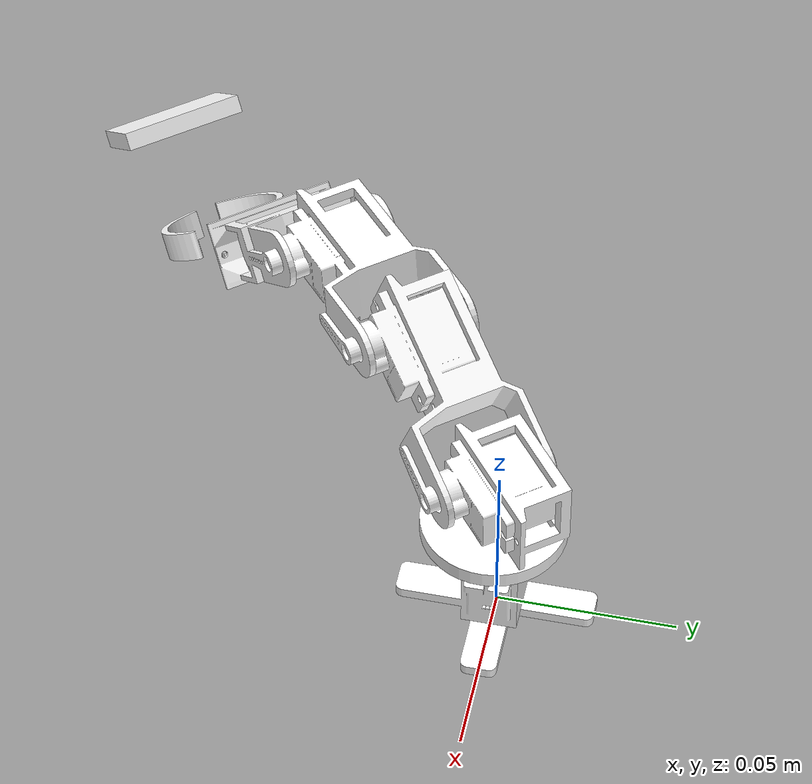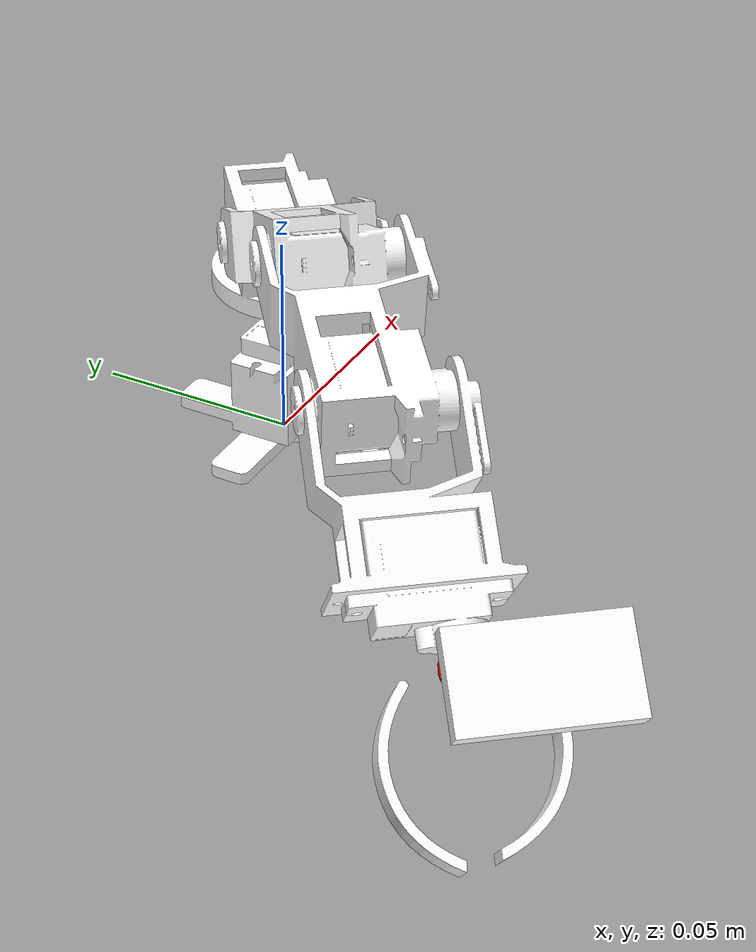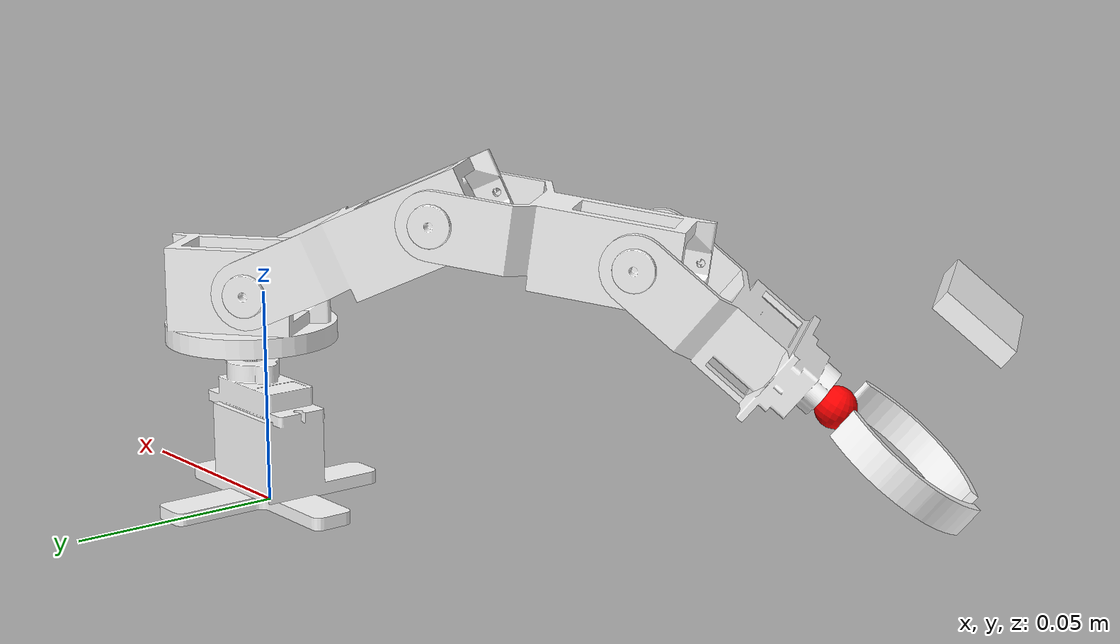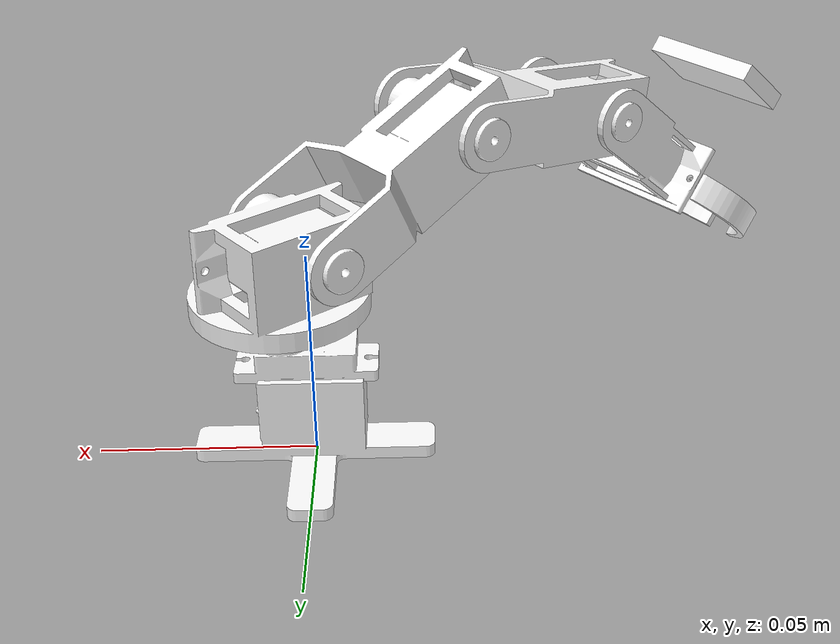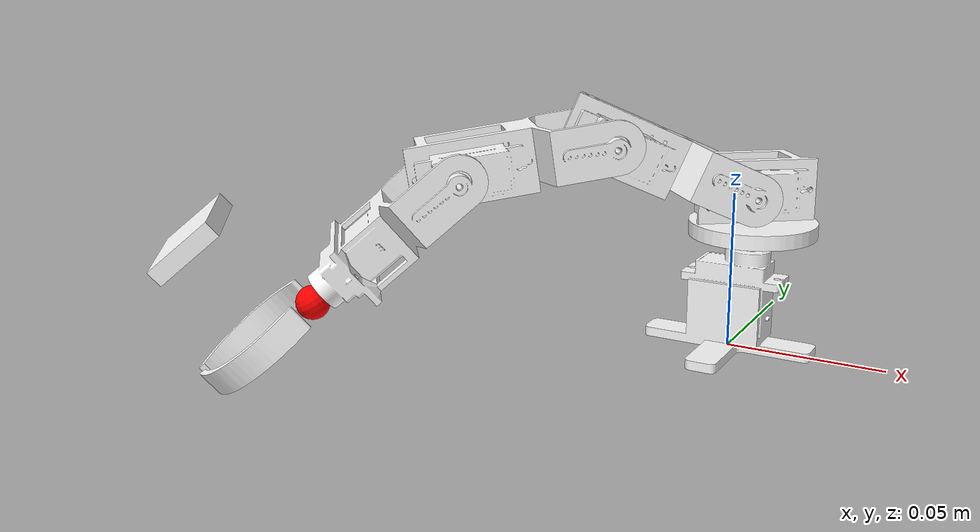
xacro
<?xml version="1.0" encoding="utf-8"?>
<robot
  name="arm1"
  xmlns:xacro="http://www.ros.org/wiki/xacro">

  <!--Import gazebo elements-->
  <xacro:include filename="$(find arm1)/urdf/arm1.gazebo.xacro" />

  <!--Links and joints-->
  <link name="world"/>

  <link name="base_link">
    <inertial>
      <origin
        xyz="0.000877732518704125 -6.1202787414609E-05 0.0136416983965608"
        rpy="0 0 0" />
      <mass
        value="0.0149906128541691" />
      <inertia
        ixx="9.0485354260676E-07"
        ixy="9.67790693248534E-12"
        ixz="-1.26661641226237E-08"
        iyy="1.3035966603116E-06"
        iyz="-4.46725888473771E-12"
        izz="1.62723345073819E-06" />
    </inertial>
    <visual>
      <origin
        xyz="0 0 0"
        rpy="0 0 0" />
      <geometry>
        <mesh
          filename="package://arm1/meshes/base_link.STL" />
      </geometry>
      <material
        name="">
        <color
          rgba="1 1 1 1" />
      </material>
    </visual>
    <collision>
      <origin
        xyz="0 0 0"
        rpy="0 0 0" />
      <geometry>
        <mesh
          filename="package://arm1/meshes/base_link.STL" />
      </geometry>
    </collision>
  </link>

  <!--this joint used to fix model-->
  <joint name="fixed_base_joint" type="fixed">
    <parent link="world"/>
    <child link="base_link"/>
  </joint>

  <link name="link1">
    <inertial>
      <origin
        xyz="-0.00115596445043076 0.000968288013516574 0.0106167918497427"
        rpy="0 0 0" />
      <mass
        value="0.0177097849398612" />
      <inertia
        ixx="1.232101837584E-06"
        ixy="-2.56920180050878E-07"
        ixz="-4.82610219024729E-10"
        iyy="1.36158543542416E-06"
        iyz="1.29098276747833E-13"
        izz="2.1081232946684E-06" />
    </inertial>
    <visual>
      <origin
        xyz="0 0 0"
        rpy="0 0 0" />
      <geometry>
        <mesh
          filename="package://arm1/meshes/link1.STL" />
      </geometry>
      <material
        name="">
        <color
          rgba="1 1 1 1" />
      </material>
    </visual>
    <collision>
      <origin
        xyz="0 0 0"
        rpy="0 0 0" />
      <geometry>
        <mesh
          filename="package://arm1/meshes/link1.STL" />
      </geometry>
    </collision>
  </link>

  <joint name="joint1"
    type="revolute">
    <origin
      xyz="0.0062 -0.0001 0.03765"
      rpy="0 0 0" />
    <parent
      link="base_link" />
    <child
      link="link1" />
    <axis
      xyz="0 0 -1" />
    <limit
      lower="-3.14"
      upper="3.14"
      effort="1.0"
      velocity="0.5" />
  </joint>

  <link name="link2">
    <inertial>
      <origin
        xyz="-0.0337317533526052 0.0128111197475059 -0.0177697557168337"
        rpy="0 0 0" />
      <mass
        value="0.0148247206742887" />
      <inertia
        ixx="1.02043082464869E-06"
        ixy="2.83170435996901E-07"
        ixz="-1.43161782662228E-08"
        iyy="1.52135172295606E-06"
        iyz="6.41902093603564E-09"
        izz="1.37313777989957E-06" />
    </inertial>
    <visual>
      <origin
        xyz="0 0 0"
        rpy="0 0 0" />
      <geometry>
        <mesh
          filename="package://arm1/meshes/link2.STL" />
      </geometry>
      <material
        name="">
        <color
          rgba="1 1 1 1" />
      </material>
    </visual>
    <collision>
      <origin
        xyz="0 0 0"
        rpy="0 0 0" />
      <geometry>
        <mesh
          filename="package://arm1/meshes/link2.STL" />
      </geometry>
    </collision>
  </link>

  <joint name="joint2"
    type="revolute">
    <origin
      xyz="0.0066138 -0.016933 0.0149"
      rpy="1.5708 0 0.66988" />
    <parent
      link="link1" />
    <child
      link="link2" />
    <axis
      xyz="0 0 -1" />
    <limit
      lower="-1.57"
      upper="3.14"
      effort="1.0"
      velocity="0.5" />
  </joint>

  <link name="link3">
    <inertial>
      <origin
        xyz="-0.0360542485164683 -0.0069582320506998 -0.0178190741615935"
        rpy="0 0 0" />
      <mass
        value="0.0148247207674592" />
      <inertia
        ixx="9.07781355259242E-07"
        ixy="-1.052003696674E-07"
        ixz="-1.55296728461929E-08"
        iyy="1.63400119526318E-06"
        iyz="-2.23294458690481E-09"
        izz="1.37313778204301E-06" />
    </inertial>
    <visual>
      <origin
        xyz="0 0 0"
        rpy="0 0 0" />
      <geometry>
        <mesh
          filename="package://arm1/meshes/link3.STL" />
      </geometry>
      <material
        name="">
        <color
          rgba="1 1 1 1" />
      </material>
    </visual>
    <collision>
      <origin
        xyz="0 0 0"
        rpy="0 0 0" />
      <geometry>
        <mesh
          filename="package://arm1/meshes/link3.STL" />
      </geometry>
    </collision>
  </link>

  <joint name="joint3"
    type="revolute">
    <origin
      xyz="-0.042605 0.016914 0.00185"
      rpy="0 0 0" />
    <parent
      link="link2" />
    <child
      link="link3" />
    <axis
      xyz="0 0 -1" />
    <limit
      lower="-1.57"
      upper="1.57"
      effort="1.0"
      velocity="0.5" />
  </joint>

  <link name="link4">
    <inertial>
      <origin
        xyz="-0.0244666115708236 -0.0199691630984935 -0.0151783608191043"
        rpy="0 0 0" />
      <mass
        value="0.0132653318638805" />
      <inertia
        ixx="1.28810723367291E-06"
        ixy="-4.80571958593516E-08"
        ixz="-1.80536823271041E-09"
        iyy="1.3067705064679E-06"
        iyz="-1.51983137928678E-09"
        izz="5.58044990324735E-07" />
    </inertial>
    <visual>
      <origin
        xyz="0 0 0"
        rpy="0 0 0" />
      <geometry>
        <mesh
          filename="package://arm1/meshes/link4.STL" />
      </geometry>
      <material
        name="">
        <color
          rgba="1 1 1 1" />
      </material>
    </visual>
    <collision>
      <origin
        xyz="0 0 0"
        rpy="0 0 0" />
      <geometry>
        <mesh
          filename="package://arm1/meshes/link4.STL" />
      </geometry>
    </collision>
  </link>

  <joint name="joint4"
    type="revolute">
    <origin
      xyz="-0.045747 -0.0082282 0.0018"
      rpy="0 0 0" />
    <parent
      link="link3" />
    <child
      link="link4" />
    <axis
      xyz="0 0 -1" />
    <limit
      lower="-1.57"
      upper="2.8"
      effort="1.0"
      velocity="0.5" />
  </joint>

  <!--gripper links-->
  <!--gripper base-->
  <link
    name="gripper_link">
    <inertial>
      <origin
        xyz="-0.0066122 0.0073345 0.035"
        rpy="0 0 0" />
      <mass
        value="0.0035" />
      <inertia
        ixx="1.2396E-07"
        ixy="-1.3634E-23"
        ixz="1.9573E-24"
        iyy="3.6458E-07"
        iyz="5.8326E-24"
        izz="4.7396E-07" />
    </inertial>
    <visual>
      <origin
        xyz="0 0 0"
        rpy="0 0 0" />
      <geometry>
        <mesh
          filename="package://arm1/meshes/gripper_Link.STL" />
      </geometry>
      <material
        name="">
        <color
          rgba="1 1 1 1" />
      </material>
    </visual>
    <collision>
      <origin
        xyz="0 0 0"
        rpy="0 0 0" />
      <geometry>
        <mesh
          filename="package://arm1/meshes/gripper_Link.STL" />
      </geometry>
    </collision>
  </link>

  <joint name="joint_gripper"
    type="fixed">
    <origin
      xyz="-0.045 -0.035 -0.01"
      rpy="0 1.57 -2.45" />
    <parent
      link="link4" />
    <child
      link="gripper_link" />
  </joint>

  <!--gripper_right link and joint-->
  <link
    name="right_link">
    <inertial>
      <origin
        xyz="-0.0085551 0.004 0.024348"
        rpy="0 0 0" />
      <mass
        value="0.0013847" />
      <inertia
        ixx="1.28810723367291E-06"
        ixy="-4.80571958593516E-08"
        ixz="-1.80536823271041E-09"
        iyy="1.3067705064679E-06"
        iyz="-1.51983137928678E-09"
        izz="5.58044990324735E-06" />
    </inertial>
    <visual>
      <origin
        xyz="0 0 0"
        rpy="0 0 0" />
      <geometry>
        <mesh
          filename="package://arm1/meshes/right_Link.STL" />
      </geometry>
      <material
        name="">
        <color
          rgba="1 1 1 1" />
      </material>
    </visual>
    <collision>
      <origin
        xyz="0 0 0"
        rpy="0 0 0" />
      <geometry>
        <mesh
          filename="package://arm1/meshes/right_Link.STL" />
      </geometry>
    </collision>
  </link>

  <joint
    name="right_joint"
    type="revolute">
    <origin
      xyz="0.0125 -0.004 0"
      rpy="-1.5708 0 0" />
    <parent
      link="gripper_link" />
    <child
      link="right_link" />
    <axis
      xyz="0 0 1" />
    <limit
      lower="-0.4"
      upper="0.4"
      effort="1.0"
      velocity="0.5" />
  </joint>

  <!--gripper_left link and joint-->
  <link
    name="left_link">
    <inertial>
      <origin
        xyz="-0.0085551 -0.004 0.024348"
        rpy="0 0 0" />
      <mass
        value="0.0013847" />
      <inertia
        ixx="1.28810723367291E-06"
        ixy="-4.80571958593516E-08"
        ixz="-1.80536823271041E-09"
        iyy="1.3067705064679E-06"
        iyz="-1.51983137928678E-09"
        izz="5.58044990324735E-06" />
    </inertial>
    <visual>
      <origin
        xyz="0 0 0"
        rpy="0 0 0" />
      <geometry>
        <mesh
          filename="package://arm1/meshes/left_Link.STL" />
      </geometry>
      <material
        name="">
        <color
          rgba="1 1 1 1" />
      </material>
    </visual>
    <collision>
      <origin
        xyz="0 0 0"
        rpy="0 0 0" />
      <geometry>
        <mesh
          filename="package://arm1/meshes/left_Link.STL" />
      </geometry>
    </collision>
  </link>

  <joint
    name="left_joint"
    type="revolute">
    <origin
      xyz="-0.0125 -0.004 0"
      rpy="-1.5708 0 0" />
    <parent
      link="gripper_link" />
    <child
      link="left_link" />
    <axis
      xyz="0 0 -1" />
    <limit
      lower="-0.4"
      upper="0.4"
      effort="1.0"
      velocity="0.5" />
  </joint>

  <!--camera_link-->
  <link name="camera_link">
    <collision>
      <origin xyz="1 0 0" rpy="0 0 0"/>
      <geometry>
        <!--mesh filename="package://arm1/meshes/camera.dae"/-->
        <sphere radius="0.000005"/>
      </geometry>
    </collision>
    <visual>
      <origin xyz="0 0 0" rpy="0 0 0"/>
      <geometry>
        <!--mesh filename="package://arm1/meshes/camera.dae"/-->
        <sphere radius="0.005"/>
      </geometry>
      <material name="red">
        <color rgba="1.0 0 0 1.0"/>
      </material>
    </visual>
    <inertial>
      <mass value="1e-5" />
      <origin xyz="0 0.05 0" rpy="0 1.57 0"/>
      <inertia ixx="1e-6" ixy="0" ixz="0" iyy="1e-6" iyz="0" izz="1e-6" />
    </inertial>
  </link>

  <joint name="camera_joint" type="fixed">
    <axis xyz="0 0 0" />
    <origin xyz="-0.042 -0.035 -0.01" rpy="-1.57 -3.14 0.5"/>
    <parent link="link4"/>
    <child link="camera_link"/>
  </joint>

  <!--Transmission and actuators-->
  <transmission name="tran1">
    <type>transmission_interface/SimpleTransmission</type>
    <joint name="joint1">
      <hardwareInterface>hardware_interface/EffortJointInterface</hardwareInterface>
    </joint>
    <actuator name="motor1">
      <hardwareInterface>hardware_interface/EffortJointInterface</hardwareInterface>
      <mechanicalReduction>1</mechanicalReduction>
    </actuator>
  </transmission>

  <transmission name="tran2">
    <type>transmission_interface/SimpleTransmission</type>
    <joint name="joint2">
      <hardwareInterface>hardware_interface/EffortJointInterface</hardwareInterface>
    </joint>
    <actuator name="motor2">
      <hardwareInterface>hardware_interface/EffortJointInterface</hardwareInterface>
      <mechanicalReduction>1</mechanicalReduction>
    </actuator>
  </transmission>

  <transmission name="tran3">
    <type>transmission_interface/SimpleTransmission</type>
    <joint name="joint3">
      <hardwareInterface>hardware_interface/EffortJointInterface</hardwareInterface>
    </joint>
    <actuator name="motor3">
      <hardwareInterface>hardware_interface/EffortJointInterface</hardwareInterface>
      <mechanicalReduction>1</mechanicalReduction>
    </actuator>
  </transmission>

  <transmission name="tran4">
    <type>transmission_interface/SimpleTransmission</type>
    <joint name="joint4">
      <hardwareInterface>hardware_interface/EffortJointInterface</hardwareInterface>
    </joint>
    <actuator name="motor4">
      <hardwareInterface>hardware_interface/EffortJointInterface</hardwareInterface>
      <mechanicalReduction>1</mechanicalReduction>
    </actuator>
  </transmission>

  <transmission name="tran5">
    <type>transmission_interface/SimpleTransmission</type>
    <joint name="right_joint">
      <hardwareInterface>hardware_interface/EffortJointInterface</hardwareInterface>
    </joint>
    <actuator name="motor5">
      <hardwareInterface>hardware_interface/EffortJointInterface</hardwareInterface>
      <mechanicalReduction>1</mechanicalReduction>
    </actuator>
  </transmission>

  <transmission name="tran6">
    <type>transmission_interface/SimpleTransmission</type>
    <joint name="left_joint">
      <hardwareInterface>hardware_interface/EffortJointInterface</hardwareInterface>
    </joint>
    <actuator name="motor6">
      <hardwareInterface>hardware_interface/EffortJointInterface</hardwareInterface>
      <mechanicalReduction>1</mechanicalReduction>
    </actuator>
  </transmission>
</robot>
